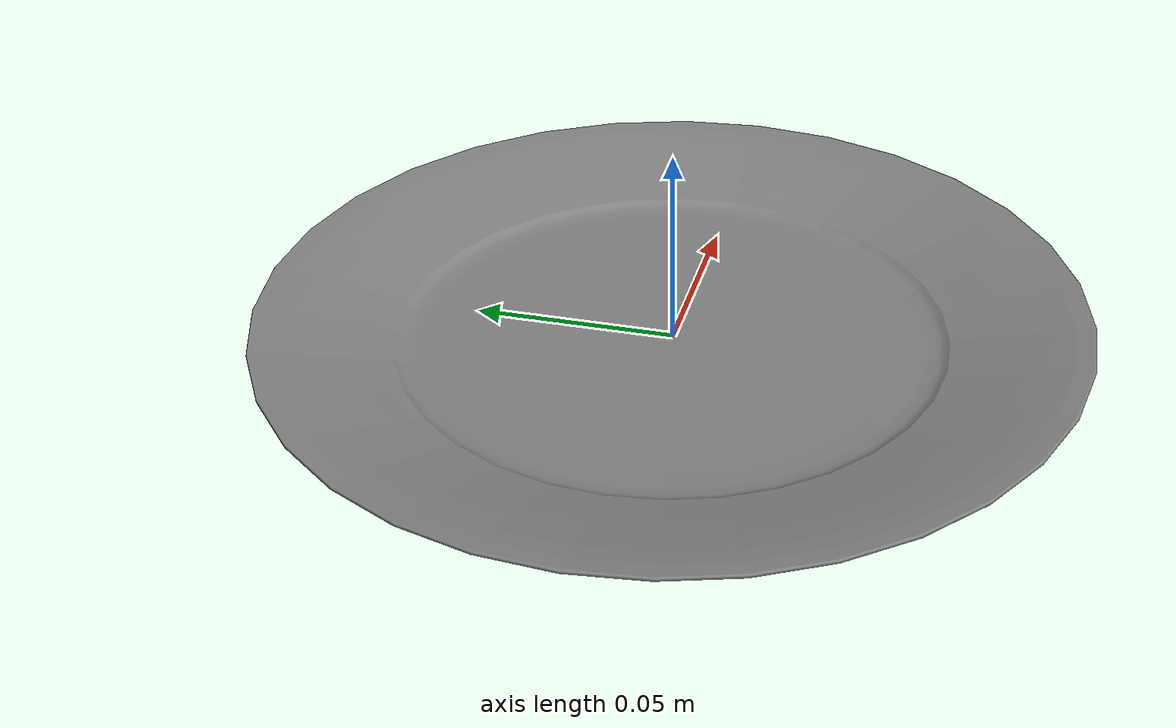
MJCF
<mujoco model="classic_plate_21cm">
    <compiler angle="radian" meshdir="../meshes/" texturedir="../meshes/textures/" autolimits="true" inertiafromgeom="false"/>
    <asset>
        <mesh name="ClassicPlate21cm" file="obj/ClassicPlate21cm.obj" />
        <mesh name="UCX_ClassicPlate21cm_001" file="stl/UCX_ClassicPlate21cm_001.stl" />
		<mesh name="UCX_ClassicPlate21cm_002" file="stl/UCX_ClassicPlate21cm_002.stl" />
		<mesh name="UCX_ClassicPlate21cm_003" file="stl/UCX_ClassicPlate21cm_003.stl" />
		<mesh name="UCX_ClassicPlate21cm_004" file="stl/UCX_ClassicPlate21cm_004.stl" />
		<mesh name="UCX_ClassicPlate21cm_005" file="stl/UCX_ClassicPlate21cm_005.stl" />
		<mesh name="UCX_ClassicPlate21cm_006" file="stl/UCX_ClassicPlate21cm_006.stl" />
		<mesh name="UCX_ClassicPlate21cm_007" file="stl/UCX_ClassicPlate21cm_007.stl" />
		<mesh name="UCX_ClassicPlate21cm_008" file="stl/UCX_ClassicPlate21cm_008.stl" />
		<mesh name="UCX_ClassicPlate21cm_009" file="stl/UCX_ClassicPlate21cm_009.stl" />
		<mesh name="UCX_ClassicPlate21cm_010" file="stl/UCX_ClassicPlate21cm_010.stl" />
		<mesh name="UCX_ClassicPlate21cm_011" file="stl/UCX_ClassicPlate21cm_011.stl" />
		<mesh name="UCX_ClassicPlate21cm_012" file="stl/UCX_ClassicPlate21cm_012.stl" />
		<mesh name="UCX_ClassicPlate21cm_013" file="stl/UCX_ClassicPlate21cm_013.stl" />
		<mesh name="UCX_ClassicPlate21cm_014" file="stl/UCX_ClassicPlate21cm_014.stl" />
		<mesh name="UCX_ClassicPlate21cm_015" file="stl/UCX_ClassicPlate21cm_015.stl" />
		<mesh name="UCX_ClassicPlate21cm_016" file="stl/UCX_ClassicPlate21cm_016.stl" />
		<mesh name="UCX_ClassicPlate21cm_017" file="stl/UCX_ClassicPlate21cm_017.stl" />
		<mesh name="UCX_ClassicPlate21cm_018" file="stl/UCX_ClassicPlate21cm_018.stl" />
		<mesh name="UCX_ClassicPlate21cm_019" file="stl/UCX_ClassicPlate21cm_019.stl" />
		<mesh name="UCX_ClassicPlate21cm_020" file="stl/UCX_ClassicPlate21cm_020.stl" />
		<mesh name="UCX_ClassicPlate21cm_021" file="stl/UCX_ClassicPlate21cm_021.stl" />
		<mesh name="UCX_ClassicPlate21cm_022" file="stl/UCX_ClassicPlate21cm_022.stl" />
		<mesh name="UCX_ClassicPlate21cm_023" file="stl/UCX_ClassicPlate21cm_023.stl" />
		<mesh name="UCX_ClassicPlate21cm_024" file="stl/UCX_ClassicPlate21cm_024.stl" />
		<mesh name="UCX_ClassicPlate21cm_025" file="stl/UCX_ClassicPlate21cm_025.stl" />
		<mesh name="UCX_ClassicPlate21cm_026" file="stl/UCX_ClassicPlate21cm_026.stl" />
		<mesh name="UCX_ClassicPlate21cm_027" file="stl/UCX_ClassicPlate21cm_027.stl" />
		<mesh name="UCX_ClassicPlate21cm_028" file="stl/UCX_ClassicPlate21cm_028.stl" />
		<mesh name="UCX_ClassicPlate21cm_029" file="stl/UCX_ClassicPlate21cm_029.stl" />
		<mesh name="UCX_ClassicPlate21cm_030" file="stl/UCX_ClassicPlate21cm_030.stl" />
		<mesh name="UCX_ClassicPlate21cm_031" file="stl/UCX_ClassicPlate21cm_031.stl" />
		<mesh name="UCX_ClassicPlate21cm_032" file="stl/UCX_ClassicPlate21cm_032.stl" />
		<mesh name="UCX_ClassicPlate21cm_033" file="stl/UCX_ClassicPlate21cm_033.stl" />
		<mesh name="UCX_ClassicPlate21cm_034" file="stl/UCX_ClassicPlate21cm_034.stl" />
		<mesh name="UCX_ClassicPlate21cm_035" file="stl/UCX_ClassicPlate21cm_035.stl" />
		<mesh name="UCX_ClassicPlate21cm_036" file="stl/UCX_ClassicPlate21cm_036.stl" />
		<mesh name="UCX_ClassicPlate21cm_037" file="stl/UCX_ClassicPlate21cm_037.stl" />
		<mesh name="UCX_ClassicPlate21cm_038" file="stl/UCX_ClassicPlate21cm_038.stl" />
		<mesh name="UCX_ClassicPlate21cm_039" file="stl/UCX_ClassicPlate21cm_039.stl" />
		<mesh name="UCX_ClassicPlate21cm_040" file="stl/UCX_ClassicPlate21cm_040.stl" />
		<mesh name="UCX_ClassicPlate21cm_041" file="stl/UCX_ClassicPlate21cm_041.stl" />
		<mesh name="UCX_ClassicPlate21cm_042" file="stl/UCX_ClassicPlate21cm_042.stl" />
		<mesh name="UCX_ClassicPlate21cm_043" file="stl/UCX_ClassicPlate21cm_043.stl" />
		<mesh name="UCX_ClassicPlate21cm_044" file="stl/UCX_ClassicPlate21cm_044.stl" />
		<mesh name="UCX_ClassicPlate21cm_045" file="stl/UCX_ClassicPlate21cm_045.stl" />
		<mesh name="UCX_ClassicPlate21cm_046" file="stl/UCX_ClassicPlate21cm_046.stl" />
		<mesh name="UCX_ClassicPlate21cm_047" file="stl/UCX_ClassicPlate21cm_047.stl" />
		<mesh name="UCX_ClassicPlate21cm_048" file="stl/UCX_ClassicPlate21cm_048.stl" />
		<mesh name="UCX_ClassicPlate21cm_049" file="stl/UCX_ClassicPlate21cm_049.stl" />
		<mesh name="UCX_ClassicPlate21cm_050" file="stl/UCX_ClassicPlate21cm_050.stl" />
		<mesh name="UCX_ClassicPlate21cm_051" file="stl/UCX_ClassicPlate21cm_051.stl" />
		<mesh name="UCX_ClassicPlate21cm_052" file="stl/UCX_ClassicPlate21cm_052.stl" />
		<mesh name="UCX_ClassicPlate21cm_053" file="stl/UCX_ClassicPlate21cm_053.stl" />
		<mesh name="UCX_ClassicPlate21cm_054" file="stl/UCX_ClassicPlate21cm_054.stl" />
		<mesh name="UCX_ClassicPlate21cm_055" file="stl/UCX_ClassicPlate21cm_055.stl" />
		<mesh name="UCX_ClassicPlate21cm_056" file="stl/UCX_ClassicPlate21cm_056.stl" />
		<mesh name="UCX_ClassicPlate21cm_057" file="stl/UCX_ClassicPlate21cm_057.stl" />
		<mesh name="UCX_ClassicPlate21cm_058" file="stl/UCX_ClassicPlate21cm_058.stl" />
		<mesh name="UCX_ClassicPlate21cm_059" file="stl/UCX_ClassicPlate21cm_059.stl" />
		<mesh name="UCX_ClassicPlate21cm_060" file="stl/UCX_ClassicPlate21cm_060.stl" />
		<mesh name="UCX_ClassicPlate21cm_061" file="stl/UCX_ClassicPlate21cm_061.stl" />
		<mesh name="UCX_ClassicPlate21cm_062" file="stl/UCX_ClassicPlate21cm_062.stl" />
		<mesh name="UCX_ClassicPlate21cm_063" file="stl/UCX_ClassicPlate21cm_063.stl" />
		<mesh name="UCX_ClassicPlate21cm_064" file="stl/UCX_ClassicPlate21cm_064.stl" />
		<mesh name="UCX_ClassicPlate21cm_065" file="stl/UCX_ClassicPlate21cm_065.stl" />
		<mesh name="UCX_ClassicPlate21cm_066" file="stl/UCX_ClassicPlate21cm_066.stl" />
		<mesh name="UCX_ClassicPlate21cm_067" file="stl/UCX_ClassicPlate21cm_067.stl" />
		<mesh name="UCX_ClassicPlate21cm_068" file="stl/UCX_ClassicPlate21cm_068.stl" />
		<mesh name="UCX_ClassicPlate21cm_069" file="stl/UCX_ClassicPlate21cm_069.stl" />
		<mesh name="UCX_ClassicPlate21cm_070" file="stl/UCX_ClassicPlate21cm_070.stl" />
		<mesh name="UCX_ClassicPlate21cm_071" file="stl/UCX_ClassicPlate21cm_071.stl" />
		<mesh name="UCX_ClassicPlate21cm_072" file="stl/UCX_ClassicPlate21cm_072.stl" />
		<mesh name="UCX_ClassicPlate21cm_073" file="stl/UCX_ClassicPlate21cm_073.stl" />
		<mesh name="UCX_ClassicPlate21cm_074" file="stl/UCX_ClassicPlate21cm_074.stl" />
		<mesh name="UCX_ClassicPlate21cm_075" file="stl/UCX_ClassicPlate21cm_075.stl" />
		<mesh name="UCX_ClassicPlate21cm_076" file="stl/UCX_ClassicPlate21cm_076.stl" />
		<mesh name="UCX_ClassicPlate21cm_077" file="stl/UCX_ClassicPlate21cm_077.stl" />
		<mesh name="UCX_ClassicPlate21cm_078" file="stl/UCX_ClassicPlate21cm_078.stl" />
		<mesh name="UCX_ClassicPlate21cm_079" file="stl/UCX_ClassicPlate21cm_079.stl" />
		<mesh name="UCX_ClassicPlate21cm_080" file="stl/UCX_ClassicPlate21cm_080.stl" />
		<mesh name="UCX_ClassicPlate21cm_081" file="stl/UCX_ClassicPlate21cm_081.stl" />
		<mesh name="UCX_ClassicPlate21cm_082" file="stl/UCX_ClassicPlate21cm_082.stl" />
		<mesh name="UCX_ClassicPlate21cm_083" file="stl/UCX_ClassicPlate21cm_083.stl" />
		<mesh name="UCX_ClassicPlate21cm_084" file="stl/UCX_ClassicPlate21cm_084.stl" />
		<mesh name="UCX_ClassicPlate21cm_085" file="stl/UCX_ClassicPlate21cm_085.stl" />
		<mesh name="UCX_ClassicPlate21cm_086" file="stl/UCX_ClassicPlate21cm_086.stl" />
		<mesh name="UCX_ClassicPlate21cm_087" file="stl/UCX_ClassicPlate21cm_087.stl" />
		<mesh name="UCX_ClassicPlate21cm_088" file="stl/UCX_ClassicPlate21cm_088.stl" />
		<mesh name="UCX_ClassicPlate21cm_089" file="stl/UCX_ClassicPlate21cm_089.stl" />
		<mesh name="UCX_ClassicPlate21cm_090" file="stl/UCX_ClassicPlate21cm_090.stl" />
		<mesh name="UCX_ClassicPlate21cm_091" file="stl/UCX_ClassicPlate21cm_091.stl" />
		<mesh name="UCX_ClassicPlate21cm_092" file="stl/UCX_ClassicPlate21cm_092.stl" />
		<mesh name="UCX_ClassicPlate21cm_093" file="stl/UCX_ClassicPlate21cm_093.stl" />
		<mesh name="UCX_ClassicPlate21cm_094" file="stl/UCX_ClassicPlate21cm_094.stl" />
		<mesh name="UCX_ClassicPlate21cm_095" file="stl/UCX_ClassicPlate21cm_095.stl" />
		<mesh name="UCX_ClassicPlate21cm_096" file="stl/UCX_ClassicPlate21cm_096.stl" />
		<mesh name="UCX_ClassicPlate21cm_097" file="stl/UCX_ClassicPlate21cm_097.stl" />
		<mesh name="UCX_ClassicPlate21cm_098" file="stl/UCX_ClassicPlate21cm_098.stl" />
		<mesh name="UCX_ClassicPlate21cm_099" file="stl/UCX_ClassicPlate21cm_099.stl" />
		<mesh name="UCX_ClassicPlate21cm_100" file="stl/UCX_ClassicPlate21cm_100.stl" />
		<mesh name="UCX_ClassicPlate21cm_101" file="stl/UCX_ClassicPlate21cm_101.stl" />
		<mesh name="UCX_ClassicPlate21cm_102" file="stl/UCX_ClassicPlate21cm_102.stl" />
		<mesh name="UCX_ClassicPlate21cm_103" file="stl/UCX_ClassicPlate21cm_103.stl" />
		<mesh name="UCX_ClassicPlate21cm_104" file="stl/UCX_ClassicPlate21cm_104.stl" />
		<mesh name="UCX_ClassicPlate21cm_105" file="stl/UCX_ClassicPlate21cm_105.stl" />
		<mesh name="UCX_ClassicPlate21cm_106" file="stl/UCX_ClassicPlate21cm_106.stl" />
		<mesh name="UCX_ClassicPlate21cm_107" file="stl/UCX_ClassicPlate21cm_107.stl" />
		<mesh name="UCX_ClassicPlate21cm_108" file="stl/UCX_ClassicPlate21cm_108.stl" />
		<mesh name="UCX_ClassicPlate21cm_109" file="stl/UCX_ClassicPlate21cm_109.stl" />
		<mesh name="UCX_ClassicPlate21cm_110" file="stl/UCX_ClassicPlate21cm_110.stl" />
		<mesh name="UCX_ClassicPlate21cm_111" file="stl/UCX_ClassicPlate21cm_111.stl" />
		<mesh name="UCX_ClassicPlate21cm_112" file="stl/UCX_ClassicPlate21cm_112.stl" />
		<mesh name="UCX_ClassicPlate21cm_113" file="stl/UCX_ClassicPlate21cm_113.stl" />
		<mesh name="UCX_ClassicPlate21cm_114" file="stl/UCX_ClassicPlate21cm_114.stl" />
		<mesh name="UCX_ClassicPlate21cm_115" file="stl/UCX_ClassicPlate21cm_115.stl" />
		<mesh name="UCX_ClassicPlate21cm_116" file="stl/UCX_ClassicPlate21cm_116.stl" />
		<mesh name="UCX_ClassicPlate21cm_117" file="stl/UCX_ClassicPlate21cm_117.stl" />
		<mesh name="UCX_ClassicPlate21cm_118" file="stl/UCX_ClassicPlate21cm_118.stl" />
		<mesh name="UCX_ClassicPlate21cm_119" file="stl/UCX_ClassicPlate21cm_119.stl" />
		<mesh name="UCX_ClassicPlate21cm_120" file="stl/UCX_ClassicPlate21cm_120.stl" />
		<mesh name="UCX_ClassicPlate21cm_121" file="stl/UCX_ClassicPlate21cm_121.stl" />
		<mesh name="UCX_ClassicPlate21cm_122" file="stl/UCX_ClassicPlate21cm_122.stl" />
		<mesh name="UCX_ClassicPlate21cm_123" file="stl/UCX_ClassicPlate21cm_123.stl" />
		<mesh name="UCX_ClassicPlate21cm_124" file="stl/UCX_ClassicPlate21cm_124.stl" />
		<mesh name="UCX_ClassicPlate21cm_125" file="stl/UCX_ClassicPlate21cm_125.stl" />
		<mesh name="UCX_ClassicPlate21cm_126" file="stl/UCX_ClassicPlate21cm_126.stl" />
		<mesh name="UCX_ClassicPlate21cm_127" file="stl/UCX_ClassicPlate21cm_127.stl" />
		<mesh name="UCX_ClassicPlate21cm_128" file="stl/UCX_ClassicPlate21cm_128.stl" />
		<mesh name="UCX_ClassicPlate21cm_129" file="stl/UCX_ClassicPlate21cm_129.stl" />
    </asset>
    <default>
        <default class="classic_plate_21cm_visual">
            <geom contype="0" conaffinity="0" />
        </default>
        <default class="classic_plate_21cm_collision">
            <geom rgba="0.9 0.9 0.9 0.0" />
        </default>
    </default>
    <worldbody>
        <body name="classic_plate_21cm">
            <freejoint />
            <inertial mass="0.03725113347172737" pos="2.789805512293242e-05 0.00019620837701950222 4.606575021171011e-05" diaginertia="9.34386916924268e-05 9.344061254523695e-05 0.00018620108312461525"/>
            <geom name="ClassicPlate21cm" pos="0.0 0.0 0.0" quat="1.0 0.0 0.0 0.0" type="mesh" mesh="ClassicPlate21cm" class="classic_plate_21cm_visual" />
            <geom name="UCX_ClassicPlate21cm_001" type="mesh" pos="0.0 0.0 0.0" quat="1.0 0.0 0.0 0.0" mesh="UCX_ClassicPlate21cm_001" class="classic_plate_21cm_collision"/>
            <geom name="UCX_ClassicPlate21cm_002" type="mesh" pos="0.0 0.0 0.0" quat="1.0 0.0 0.0 0.0" mesh="UCX_ClassicPlate21cm_002" class="classic_plate_21cm_collision"/>
            <geom name="UCX_ClassicPlate21cm_003" type="mesh" pos="0.0 0.0 0.0" quat="1.0 0.0 0.0 0.0" mesh="UCX_ClassicPlate21cm_003" class="classic_plate_21cm_collision"/>
            <geom name="UCX_ClassicPlate21cm_004" type="mesh" pos="0.0 0.0 0.0" quat="1.0 0.0 0.0 0.0" mesh="UCX_ClassicPlate21cm_004" class="classic_plate_21cm_collision"/>
            <geom name="UCX_ClassicPlate21cm_005" type="mesh" pos="0.0 0.0 0.0" quat="1.0 0.0 0.0 0.0" mesh="UCX_ClassicPlate21cm_005" class="classic_plate_21cm_collision"/>
            <geom name="UCX_ClassicPlate21cm_006" type="mesh" pos="0.0 0.0 0.0" quat="1.0 0.0 0.0 0.0" mesh="UCX_ClassicPlate21cm_006" class="classic_plate_21cm_collision"/>
            <geom name="UCX_ClassicPlate21cm_007" type="mesh" pos="0.0 0.0 0.0" quat="1.0 0.0 0.0 0.0" mesh="UCX_ClassicPlate21cm_007" class="classic_plate_21cm_collision"/>
            <geom name="UCX_ClassicPlate21cm_008" type="mesh" pos="0.0 0.0 0.0" quat="1.0 0.0 0.0 0.0" mesh="UCX_ClassicPlate21cm_008" class="classic_plate_21cm_collision"/>
            <geom name="UCX_ClassicPlate21cm_009" type="mesh" pos="0.0 0.0 0.0" quat="1.0 0.0 0.0 0.0" mesh="UCX_ClassicPlate21cm_009" class="classic_plate_21cm_collision"/>
            <geom name="UCX_ClassicPlate21cm_010" type="mesh" pos="0.0 0.0 0.0" quat="1.0 0.0 0.0 0.0" mesh="UCX_ClassicPlate21cm_010" class="classic_plate_21cm_collision"/>
            <geom name="UCX_ClassicPlate21cm_011" type="mesh" pos="0.0 0.0 0.0" quat="1.0 0.0 0.0 0.0" mesh="UCX_ClassicPlate21cm_011" class="classic_plate_21cm_collision"/>
            <geom name="UCX_ClassicPlate21cm_012" type="mesh" pos="0.0 0.0 0.0" quat="1.0 0.0 0.0 0.0" mesh="UCX_ClassicPlate21cm_012" class="classic_plate_21cm_collision"/>
            <geom name="UCX_ClassicPlate21cm_013" type="mesh" pos="0.0 0.0 0.0" quat="1.0 0.0 0.0 0.0" mesh="UCX_ClassicPlate21cm_013" class="classic_plate_21cm_collision"/>
            <geom name="UCX_ClassicPlate21cm_014" type="mesh" pos="0.0 0.0 0.0" quat="1.0 0.0 0.0 0.0" mesh="UCX_ClassicPlate21cm_014" class="classic_plate_21cm_collision"/>
            <geom name="UCX_ClassicPlate21cm_015" type="mesh" pos="0.0 0.0 0.0" quat="1.0 0.0 0.0 0.0" mesh="UCX_ClassicPlate21cm_015" class="classic_plate_21cm_collision"/>
            <geom name="UCX_ClassicPlate21cm_016" type="mesh" pos="0.0 0.0 0.0" quat="1.0 0.0 0.0 0.0" mesh="UCX_ClassicPlate21cm_016" class="classic_plate_21cm_collision"/>
            <geom name="UCX_ClassicPlate21cm_017" type="mesh" pos="0.0 0.0 0.0" quat="1.0 0.0 0.0 0.0" mesh="UCX_ClassicPlate21cm_017" class="classic_plate_21cm_collision"/>
            <geom name="UCX_ClassicPlate21cm_018" type="mesh" pos="0.0 0.0 0.0" quat="1.0 0.0 0.0 0.0" mesh="UCX_ClassicPlate21cm_018" class="classic_plate_21cm_collision"/>
            <geom name="UCX_ClassicPlate21cm_019" type="mesh" pos="0.0 0.0 0.0" quat="1.0 0.0 0.0 0.0" mesh="UCX_ClassicPlate21cm_019" class="classic_plate_21cm_collision"/>
            <geom name="UCX_ClassicPlate21cm_020" type="mesh" pos="0.0 0.0 0.0" quat="1.0 0.0 0.0 0.0" mesh="UCX_ClassicPlate21cm_020" class="classic_plate_21cm_collision"/>
            <geom name="UCX_ClassicPlate21cm_021" type="mesh" pos="0.0 0.0 0.0" quat="1.0 0.0 0.0 0.0" mesh="UCX_ClassicPlate21cm_021" class="classic_plate_21cm_collision"/>
            <geom name="UCX_ClassicPlate21cm_022" type="mesh" pos="0.0 0.0 0.0" quat="1.0 0.0 0.0 0.0" mesh="UCX_ClassicPlate21cm_022" class="classic_plate_21cm_collision"/>
            <geom name="UCX_ClassicPlate21cm_023" type="mesh" pos="0.0 0.0 0.0" quat="1.0 0.0 0.0 0.0" mesh="UCX_ClassicPlate21cm_023" class="classic_plate_21cm_collision"/>
            <geom name="UCX_ClassicPlate21cm_024" type="mesh" pos="0.0 0.0 0.0" quat="1.0 0.0 0.0 0.0" mesh="UCX_ClassicPlate21cm_024" class="classic_plate_21cm_collision"/>
            <geom name="UCX_ClassicPlate21cm_025" type="mesh" pos="0.0 0.0 0.0" quat="1.0 0.0 0.0 0.0" mesh="UCX_ClassicPlate21cm_025" class="classic_plate_21cm_collision"/>
            <geom name="UCX_ClassicPlate21cm_026" type="mesh" pos="0.0 0.0 0.0" quat="1.0 0.0 0.0 0.0" mesh="UCX_ClassicPlate21cm_026" class="classic_plate_21cm_collision"/>
            <geom name="UCX_ClassicPlate21cm_027" type="mesh" pos="0.0 0.0 0.0" quat="1.0 0.0 0.0 0.0" mesh="UCX_ClassicPlate21cm_027" class="classic_plate_21cm_collision"/>
            <geom name="UCX_ClassicPlate21cm_028" type="mesh" pos="0.0 0.0 0.0" quat="1.0 0.0 0.0 0.0" mesh="UCX_ClassicPlate21cm_028" class="classic_plate_21cm_collision"/>
            <geom name="UCX_ClassicPlate21cm_029" type="mesh" pos="0.0 0.0 0.0" quat="1.0 0.0 0.0 0.0" mesh="UCX_ClassicPlate21cm_029" class="classic_plate_21cm_collision"/>
            <geom name="UCX_ClassicPlate21cm_030" type="mesh" pos="0.0 0.0 0.0" quat="1.0 0.0 0.0 0.0" mesh="UCX_ClassicPlate21cm_030" class="classic_plate_21cm_collision"/>
            <geom name="UCX_ClassicPlate21cm_031" type="mesh" pos="0.0 0.0 0.0" quat="1.0 0.0 0.0 0.0" mesh="UCX_ClassicPlate21cm_031" class="classic_plate_21cm_collision"/>
            <geom name="UCX_ClassicPlate21cm_032" type="mesh" pos="0.0 0.0 0.0" quat="1.0 0.0 0.0 0.0" mesh="UCX_ClassicPlate21cm_032" class="classic_plate_21cm_collision"/>
            <geom name="UCX_ClassicPlate21cm_033" type="mesh" pos="0.0 0.0 0.0" quat="1.0 0.0 0.0 0.0" mesh="UCX_ClassicPlate21cm_033" class="classic_plate_21cm_collision"/>
            <geom name="UCX_ClassicPlate21cm_034" type="mesh" pos="0.0 0.0 0.0" quat="1.0 0.0 0.0 0.0" mesh="UCX_ClassicPlate21cm_034" class="classic_plate_21cm_collision"/>
            <geom name="UCX_ClassicPlate21cm_035" type="mesh" pos="0.0 0.0 0.0" quat="1.0 0.0 0.0 0.0" mesh="UCX_ClassicPlate21cm_035" class="classic_plate_21cm_collision"/>
            <geom name="UCX_ClassicPlate21cm_036" type="mesh" pos="0.0 0.0 0.0" quat="1.0 0.0 0.0 0.0" mesh="UCX_ClassicPlate21cm_036" class="classic_plate_21cm_collision"/>
            <geom name="UCX_ClassicPlate21cm_037" type="mesh" pos="0.0 0.0 0.0" quat="1.0 0.0 0.0 0.0" mesh="UCX_ClassicPlate21cm_037" class="classic_plate_21cm_collision"/>
            <geom name="UCX_ClassicPlate21cm_038" type="mesh" pos="0.0 0.0 0.0" quat="1.0 0.0 0.0 0.0" mesh="UCX_ClassicPlate21cm_038" class="classic_plate_21cm_collision"/>
            <geom name="UCX_ClassicPlate21cm_039" type="mesh" pos="0.0 0.0 0.0" quat="1.0 0.0 0.0 0.0" mesh="UCX_ClassicPlate21cm_039" class="classic_plate_21cm_collision"/>
            <geom name="UCX_ClassicPlate21cm_040" type="mesh" pos="0.0 0.0 0.0" quat="1.0 0.0 0.0 0.0" mesh="UCX_ClassicPlate21cm_040" class="classic_plate_21cm_collision"/>
            <geom name="UCX_ClassicPlate21cm_041" type="mesh" pos="0.0 0.0 0.0" quat="1.0 0.0 0.0 0.0" mesh="UCX_ClassicPlate21cm_041" class="classic_plate_21cm_collision"/>
            <geom name="UCX_ClassicPlate21cm_042" type="mesh" pos="0.0 0.0 0.0" quat="1.0 0.0 0.0 0.0" mesh="UCX_ClassicPlate21cm_042" class="classic_plate_21cm_collision"/>
            <geom name="UCX_ClassicPlate21cm_043" type="mesh" pos="0.0 0.0 0.0" quat="1.0 0.0 0.0 0.0" mesh="UCX_ClassicPlate21cm_043" class="classic_plate_21cm_collision"/>
            <geom name="UCX_ClassicPlate21cm_044" type="mesh" pos="0.0 0.0 0.0" quat="1.0 0.0 0.0 0.0" mesh="UCX_ClassicPlate21cm_044" class="classic_plate_21cm_collision"/>
            <geom name="UCX_ClassicPlate21cm_045" type="mesh" pos="0.0 0.0 0.0" quat="1.0 0.0 0.0 0.0" mesh="UCX_ClassicPlate21cm_045" class="classic_plate_21cm_collision"/>
            <geom name="UCX_ClassicPlate21cm_046" type="mesh" pos="0.0 0.0 0.0" quat="1.0 0.0 0.0 0.0" mesh="UCX_ClassicPlate21cm_046" class="classic_plate_21cm_collision"/>
            <geom name="UCX_ClassicPlate21cm_047" type="mesh" pos="0.0 0.0 0.0" quat="1.0 0.0 0.0 0.0" mesh="UCX_ClassicPlate21cm_047" class="classic_plate_21cm_collision"/>
            <geom name="UCX_ClassicPlate21cm_048" type="mesh" pos="0.0 0.0 0.0" quat="1.0 0.0 0.0 0.0" mesh="UCX_ClassicPlate21cm_048" class="classic_plate_21cm_collision"/>
            <geom name="UCX_ClassicPlate21cm_049" type="mesh" pos="0.0 0.0 0.0" quat="1.0 0.0 0.0 0.0" mesh="UCX_ClassicPlate21cm_049" class="classic_plate_21cm_collision"/>
            <geom name="UCX_ClassicPlate21cm_050" type="mesh" pos="0.0 0.0 0.0" quat="1.0 0.0 0.0 0.0" mesh="UCX_ClassicPlate21cm_050" class="classic_plate_21cm_collision"/>
            <geom name="UCX_ClassicPlate21cm_051" type="mesh" pos="0.0 0.0 0.0" quat="1.0 0.0 0.0 0.0" mesh="UCX_ClassicPlate21cm_051" class="classic_plate_21cm_collision"/>
            <geom name="UCX_ClassicPlate21cm_052" type="mesh" pos="0.0 0.0 0.0" quat="1.0 0.0 0.0 0.0" mesh="UCX_ClassicPlate21cm_052" class="classic_plate_21cm_collision"/>
            <geom name="UCX_ClassicPlate21cm_053" type="mesh" pos="0.0 0.0 0.0" quat="1.0 0.0 0.0 0.0" mesh="UCX_ClassicPlate21cm_053" class="classic_plate_21cm_collision"/>
            <geom name="UCX_ClassicPlate21cm_054" type="mesh" pos="0.0 0.0 0.0" quat="1.0 0.0 0.0 0.0" mesh="UCX_ClassicPlate21cm_054" class="classic_plate_21cm_collision"/>
            <geom name="UCX_ClassicPlate21cm_055" type="mesh" pos="0.0 0.0 0.0" quat="1.0 0.0 0.0 0.0" mesh="UCX_ClassicPlate21cm_055" class="classic_plate_21cm_collision"/>
            <geom name="UCX_ClassicPlate21cm_056" type="mesh" pos="0.0 0.0 0.0" quat="1.0 0.0 0.0 0.0" mesh="UCX_ClassicPlate21cm_056" class="classic_plate_21cm_collision"/>
            <geom name="UCX_ClassicPlate21cm_057" type="mesh" pos="0.0 0.0 0.0" quat="1.0 0.0 0.0 0.0" mesh="UCX_ClassicPlate21cm_057" class="classic_plate_21cm_collision"/>
            <geom name="UCX_ClassicPlate21cm_058" type="mesh" pos="0.0 0.0 0.0" quat="1.0 0.0 0.0 0.0" mesh="UCX_ClassicPlate21cm_058" class="classic_plate_21cm_collision"/>
            <geom name="UCX_ClassicPlate21cm_059" type="mesh" pos="0.0 0.0 0.0" quat="1.0 0.0 0.0 0.0" mesh="UCX_ClassicPlate21cm_059" class="classic_plate_21cm_collision"/>
            <geom name="UCX_ClassicPlate21cm_060" type="mesh" pos="0.0 0.0 0.0" quat="1.0 0.0 0.0 0.0" mesh="UCX_ClassicPlate21cm_060" class="classic_plate_21cm_collision"/>
            <geom name="UCX_ClassicPlate21cm_061" type="mesh" pos="0.0 0.0 0.0" quat="1.0 0.0 0.0 0.0" mesh="UCX_ClassicPlate21cm_061" class="classic_plate_21cm_collision"/>
            <geom name="UCX_ClassicPlate21cm_062" type="mesh" pos="0.0 0.0 0.0" quat="1.0 0.0 0.0 0.0" mesh="UCX_ClassicPlate21cm_062" class="classic_plate_21cm_collision"/>
            <geom name="UCX_ClassicPlate21cm_063" type="mesh" pos="0.0 0.0 0.0" quat="1.0 0.0 0.0 0.0" mesh="UCX_ClassicPlate21cm_063" class="classic_plate_21cm_collision"/>
            <geom name="UCX_ClassicPlate21cm_064" type="mesh" pos="0.0 0.0 0.0" quat="1.0 0.0 0.0 0.0" mesh="UCX_ClassicPlate21cm_064" class="classic_plate_21cm_collision"/>
            <geom name="UCX_ClassicPlate21cm_065" type="mesh" pos="0.0 0.0 0.0" quat="1.0 0.0 0.0 0.0" mesh="UCX_ClassicPlate21cm_065" class="classic_plate_21cm_collision"/>
            <geom name="UCX_ClassicPlate21cm_066" type="mesh" pos="0.0 0.0 0.0" quat="1.0 0.0 0.0 0.0" mesh="UCX_ClassicPlate21cm_066" class="classic_plate_21cm_collision"/>
            <geom name="UCX_ClassicPlate21cm_067" type="mesh" pos="0.0 0.0 0.0" quat="1.0 0.0 0.0 0.0" mesh="UCX_ClassicPlate21cm_067" class="classic_plate_21cm_collision"/>
            <geom name="UCX_ClassicPlate21cm_068" type="mesh" pos="0.0 0.0 0.0" quat="1.0 0.0 0.0 0.0" mesh="UCX_ClassicPlate21cm_068" class="classic_plate_21cm_collision"/>
            <geom name="UCX_ClassicPlate21cm_069" type="mesh" pos="0.0 0.0 0.0" quat="1.0 0.0 0.0 0.0" mesh="UCX_ClassicPlate21cm_069" class="classic_plate_21cm_collision"/>
            <geom name="UCX_ClassicPlate21cm_070" type="mesh" pos="0.0 0.0 0.0" quat="1.0 0.0 0.0 0.0" mesh="UCX_ClassicPlate21cm_070" class="classic_plate_21cm_collision"/>
            <geom name="UCX_ClassicPlate21cm_071" type="mesh" pos="0.0 0.0 0.0" quat="1.0 0.0 0.0 0.0" mesh="UCX_ClassicPlate21cm_071" class="classic_plate_21cm_collision"/>
            <geom name="UCX_ClassicPlate21cm_072" type="mesh" pos="0.0 0.0 0.0" quat="1.0 0.0 0.0 0.0" mesh="UCX_ClassicPlate21cm_072" class="classic_plate_21cm_collision"/>
            <geom name="UCX_ClassicPlate21cm_073" type="mesh" pos="0.0 0.0 0.0" quat="1.0 0.0 0.0 0.0" mesh="UCX_ClassicPlate21cm_073" class="classic_plate_21cm_collision"/>
            <geom name="UCX_ClassicPlate21cm_074" type="mesh" pos="0.0 0.0 0.0" quat="1.0 0.0 0.0 0.0" mesh="UCX_ClassicPlate21cm_074" class="classic_plate_21cm_collision"/>
            <geom name="UCX_ClassicPlate21cm_075" type="mesh" pos="0.0 0.0 0.0" quat="1.0 0.0 0.0 0.0" mesh="UCX_ClassicPlate21cm_075" class="classic_plate_21cm_collision"/>
            <geom name="UCX_ClassicPlate21cm_076" type="mesh" pos="0.0 0.0 0.0" quat="1.0 0.0 0.0 0.0" mesh="UCX_ClassicPlate21cm_076" class="classic_plate_21cm_collision"/>
            <geom name="UCX_ClassicPlate21cm_077" type="mesh" pos="0.0 0.0 0.0" quat="1.0 0.0 0.0 0.0" mesh="UCX_ClassicPlate21cm_077" class="classic_plate_21cm_collision"/>
            <geom name="UCX_ClassicPlate21cm_078" type="mesh" pos="0.0 0.0 0.0" quat="1.0 0.0 0.0 0.0" mesh="UCX_ClassicPlate21cm_078" class="classic_plate_21cm_collision"/>
            <geom name="UCX_ClassicPlate21cm_079" type="mesh" pos="0.0 0.0 0.0" quat="1.0 0.0 0.0 0.0" mesh="UCX_ClassicPlate21cm_079" class="classic_plate_21cm_collision"/>
            <geom name="UCX_ClassicPlate21cm_080" type="mesh" pos="0.0 0.0 0.0" quat="1.0 0.0 0.0 0.0" mesh="UCX_ClassicPlate21cm_080" class="classic_plate_21cm_collision"/>
            <geom name="UCX_ClassicPlate21cm_081" type="mesh" pos="0.0 0.0 0.0" quat="1.0 0.0 0.0 0.0" mesh="UCX_ClassicPlate21cm_081" class="classic_plate_21cm_collision"/>
            <geom name="UCX_ClassicPlate21cm_082" type="mesh" pos="0.0 0.0 0.0" quat="1.0 0.0 0.0 0.0" mesh="UCX_ClassicPlate21cm_082" class="classic_plate_21cm_collision"/>
            <geom name="UCX_ClassicPlate21cm_083" type="mesh" pos="0.0 0.0 0.0" quat="1.0 0.0 0.0 0.0" mesh="UCX_ClassicPlate21cm_083" class="classic_plate_21cm_collision"/>
            <geom name="UCX_ClassicPlate21cm_084" type="mesh" pos="0.0 0.0 0.0" quat="1.0 0.0 0.0 0.0" mesh="UCX_ClassicPlate21cm_084" class="classic_plate_21cm_collision"/>
            <geom name="UCX_ClassicPlate21cm_085" type="mesh" pos="0.0 0.0 0.0" quat="1.0 0.0 0.0 0.0" mesh="UCX_ClassicPlate21cm_085" class="classic_plate_21cm_collision"/>
            <geom name="UCX_ClassicPlate21cm_086" type="mesh" pos="0.0 0.0 0.0" quat="1.0 0.0 0.0 0.0" mesh="UCX_ClassicPlate21cm_086" class="classic_plate_21cm_collision"/>
            <geom name="UCX_ClassicPlate21cm_087" type="mesh" pos="0.0 0.0 0.0" quat="1.0 0.0 0.0 0.0" mesh="UCX_ClassicPlate21cm_087" class="classic_plate_21cm_collision"/>
            <geom name="UCX_ClassicPlate21cm_088" type="mesh" pos="0.0 0.0 0.0" quat="1.0 0.0 0.0 0.0" mesh="UCX_ClassicPlate21cm_088" class="classic_plate_21cm_collision"/>
            <geom name="UCX_ClassicPlate21cm_089" type="mesh" pos="0.0 0.0 0.0" quat="1.0 0.0 0.0 0.0" mesh="UCX_ClassicPlate21cm_089" class="classic_plate_21cm_collision"/>
            <geom name="UCX_ClassicPlate21cm_090" type="mesh" pos="0.0 0.0 0.0" quat="1.0 0.0 0.0 0.0" mesh="UCX_ClassicPlate21cm_090" class="classic_plate_21cm_collision"/>
            <geom name="UCX_ClassicPlate21cm_091" type="mesh" pos="0.0 0.0 0.0" quat="1.0 0.0 0.0 0.0" mesh="UCX_ClassicPlate21cm_091" class="classic_plate_21cm_collision"/>
            <geom name="UCX_ClassicPlate21cm_092" type="mesh" pos="0.0 0.0 0.0" quat="1.0 0.0 0.0 0.0" mesh="UCX_ClassicPlate21cm_092" class="classic_plate_21cm_collision"/>
            <geom name="UCX_ClassicPlate21cm_093" type="mesh" pos="0.0 0.0 0.0" quat="1.0 0.0 0.0 0.0" mesh="UCX_ClassicPlate21cm_093" class="classic_plate_21cm_collision"/>
            <geom name="UCX_ClassicPlate21cm_094" type="mesh" pos="0.0 0.0 0.0" quat="1.0 0.0 0.0 0.0" mesh="UCX_ClassicPlate21cm_094" class="classic_plate_21cm_collision"/>
            <geom name="UCX_ClassicPlate21cm_095" type="mesh" pos="0.0 0.0 0.0" quat="1.0 0.0 0.0 0.0" mesh="UCX_ClassicPlate21cm_095" class="classic_plate_21cm_collision"/>
            <geom name="UCX_ClassicPlate21cm_096" type="mesh" pos="0.0 0.0 0.0" quat="1.0 0.0 0.0 0.0" mesh="UCX_ClassicPlate21cm_096" class="classic_plate_21cm_collision"/>
            <geom name="UCX_ClassicPlate21cm_097" type="mesh" pos="0.0 0.0 0.0" quat="1.0 0.0 0.0 0.0" mesh="UCX_ClassicPlate21cm_097" class="classic_plate_21cm_collision"/>
            <geom name="UCX_ClassicPlate21cm_098" type="mesh" pos="0.0 0.0 0.0" quat="1.0 0.0 0.0 0.0" mesh="UCX_ClassicPlate21cm_098" class="classic_plate_21cm_collision"/>
            <geom name="UCX_ClassicPlate21cm_099" type="mesh" pos="0.0 0.0 0.0" quat="1.0 0.0 0.0 0.0" mesh="UCX_ClassicPlate21cm_099" class="classic_plate_21cm_collision"/>
            <geom name="UCX_ClassicPlate21cm_100" type="mesh" pos="0.0 0.0 0.0" quat="1.0 0.0 0.0 0.0" mesh="UCX_ClassicPlate21cm_100" class="classic_plate_21cm_collision"/>
            <geom name="UCX_ClassicPlate21cm_101" type="mesh" pos="0.0 0.0 0.0" quat="1.0 0.0 0.0 0.0" mesh="UCX_ClassicPlate21cm_101" class="classic_plate_21cm_collision"/>
            <geom name="UCX_ClassicPlate21cm_102" type="mesh" pos="0.0 0.0 0.0" quat="1.0 0.0 0.0 0.0" mesh="UCX_ClassicPlate21cm_102" class="classic_plate_21cm_collision"/>
            <geom name="UCX_ClassicPlate21cm_103" type="mesh" pos="0.0 0.0 0.0" quat="1.0 0.0 0.0 0.0" mesh="UCX_ClassicPlate21cm_103" class="classic_plate_21cm_collision"/>
            <geom name="UCX_ClassicPlate21cm_104" type="mesh" pos="0.0 0.0 0.0" quat="1.0 0.0 0.0 0.0" mesh="UCX_ClassicPlate21cm_104" class="classic_plate_21cm_collision"/>
            <geom name="UCX_ClassicPlate21cm_105" type="mesh" pos="0.0 0.0 0.0" quat="1.0 0.0 0.0 0.0" mesh="UCX_ClassicPlate21cm_105" class="classic_plate_21cm_collision"/>
            <geom name="UCX_ClassicPlate21cm_106" type="mesh" pos="0.0 0.0 0.0" quat="1.0 0.0 0.0 0.0" mesh="UCX_ClassicPlate21cm_106" class="classic_plate_21cm_collision"/>
            <geom name="UCX_ClassicPlate21cm_107" type="mesh" pos="0.0 0.0 0.0" quat="1.0 0.0 0.0 0.0" mesh="UCX_ClassicPlate21cm_107" class="classic_plate_21cm_collision"/>
            <geom name="UCX_ClassicPlate21cm_108" type="mesh" pos="0.0 0.0 0.0" quat="1.0 0.0 0.0 0.0" mesh="UCX_ClassicPlate21cm_108" class="classic_plate_21cm_collision"/>
            <geom name="UCX_ClassicPlate21cm_109" type="mesh" pos="0.0 0.0 0.0" quat="1.0 0.0 0.0 0.0" mesh="UCX_ClassicPlate21cm_109" class="classic_plate_21cm_collision"/>
            <geom name="UCX_ClassicPlate21cm_110" type="mesh" pos="0.0 0.0 0.0" quat="1.0 0.0 0.0 0.0" mesh="UCX_ClassicPlate21cm_110" class="classic_plate_21cm_collision"/>
            <geom name="UCX_ClassicPlate21cm_111" type="mesh" pos="0.0 0.0 0.0" quat="1.0 0.0 0.0 0.0" mesh="UCX_ClassicPlate21cm_111" class="classic_plate_21cm_collision"/>
            <geom name="UCX_ClassicPlate21cm_112" type="mesh" pos="0.0 0.0 0.0" quat="1.0 0.0 0.0 0.0" mesh="UCX_ClassicPlate21cm_112" class="classic_plate_21cm_collision"/>
            <geom name="UCX_ClassicPlate21cm_113" type="mesh" pos="0.0 0.0 0.0" quat="1.0 0.0 0.0 0.0" mesh="UCX_ClassicPlate21cm_113" class="classic_plate_21cm_collision"/>
            <geom name="UCX_ClassicPlate21cm_114" type="mesh" pos="0.0 0.0 0.0" quat="1.0 0.0 0.0 0.0" mesh="UCX_ClassicPlate21cm_114" class="classic_plate_21cm_collision"/>
            <geom name="UCX_ClassicPlate21cm_115" type="mesh" pos="0.0 0.0 0.0" quat="1.0 0.0 0.0 0.0" mesh="UCX_ClassicPlate21cm_115" class="classic_plate_21cm_collision"/>
            <geom name="UCX_ClassicPlate21cm_116" type="mesh" pos="0.0 0.0 0.0" quat="1.0 0.0 0.0 0.0" mesh="UCX_ClassicPlate21cm_116" class="classic_plate_21cm_collision"/>
            <geom name="UCX_ClassicPlate21cm_117" type="mesh" pos="0.0 0.0 0.0" quat="1.0 0.0 0.0 0.0" mesh="UCX_ClassicPlate21cm_117" class="classic_plate_21cm_collision"/>
            <geom name="UCX_ClassicPlate21cm_118" type="mesh" pos="0.0 0.0 0.0" quat="1.0 0.0 0.0 0.0" mesh="UCX_ClassicPlate21cm_118" class="classic_plate_21cm_collision"/>
            <geom name="UCX_ClassicPlate21cm_119" type="mesh" pos="0.0 0.0 0.0" quat="1.0 0.0 0.0 0.0" mesh="UCX_ClassicPlate21cm_119" class="classic_plate_21cm_collision"/>
            <geom name="UCX_ClassicPlate21cm_120" type="mesh" pos="0.0 0.0 0.0" quat="1.0 0.0 0.0 0.0" mesh="UCX_ClassicPlate21cm_120" class="classic_plate_21cm_collision"/>
            <geom name="UCX_ClassicPlate21cm_121" type="mesh" pos="0.0 0.0 0.0" quat="1.0 0.0 0.0 0.0" mesh="UCX_ClassicPlate21cm_121" class="classic_plate_21cm_collision"/>
            <geom name="UCX_ClassicPlate21cm_122" type="mesh" pos="0.0 0.0 0.0" quat="1.0 0.0 0.0 0.0" mesh="UCX_ClassicPlate21cm_122" class="classic_plate_21cm_collision"/>
            <geom name="UCX_ClassicPlate21cm_123" type="mesh" pos="0.0 0.0 0.0" quat="1.0 0.0 0.0 0.0" mesh="UCX_ClassicPlate21cm_123" class="classic_plate_21cm_collision"/>
            <geom name="UCX_ClassicPlate21cm_124" type="mesh" pos="0.0 0.0 0.0" quat="1.0 0.0 0.0 0.0" mesh="UCX_ClassicPlate21cm_124" class="classic_plate_21cm_collision"/>
            <geom name="UCX_ClassicPlate21cm_125" type="mesh" pos="0.0 0.0 0.0" quat="1.0 0.0 0.0 0.0" mesh="UCX_ClassicPlate21cm_125" class="classic_plate_21cm_collision"/>
            <geom name="UCX_ClassicPlate21cm_127" type="mesh" pos="0.0 0.0 0.0" quat="1.0 0.0 0.0 0.0" mesh="UCX_ClassicPlate21cm_127" class="classic_plate_21cm_collision"/>
            <geom name="UCX_ClassicPlate21cm_128" type="mesh" pos="0.0 0.0 0.0" quat="1.0 0.0 0.0 0.0" mesh="UCX_ClassicPlate21cm_128" class="classic_plate_21cm_collision"/>
            <geom name="UCX_ClassicPlate21cm_129" type="mesh" pos="0.0 0.0 0.0" quat="1.0 0.0 0.0 0.0" mesh="UCX_ClassicPlate21cm_129" class="classic_plate_21cm_collision"/>
        </body>
    </worldbody>
    <equality />
    <contact />
</mujoco>
